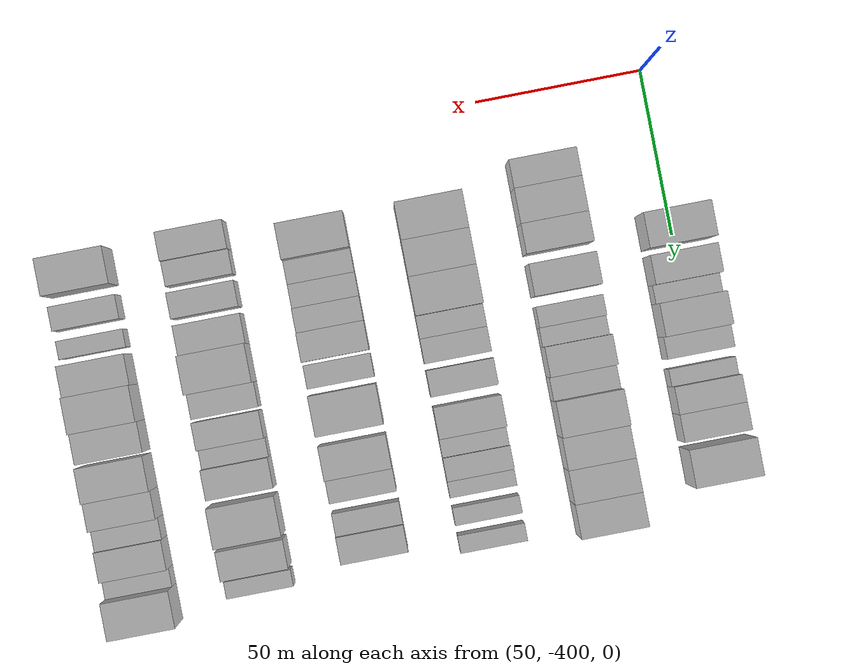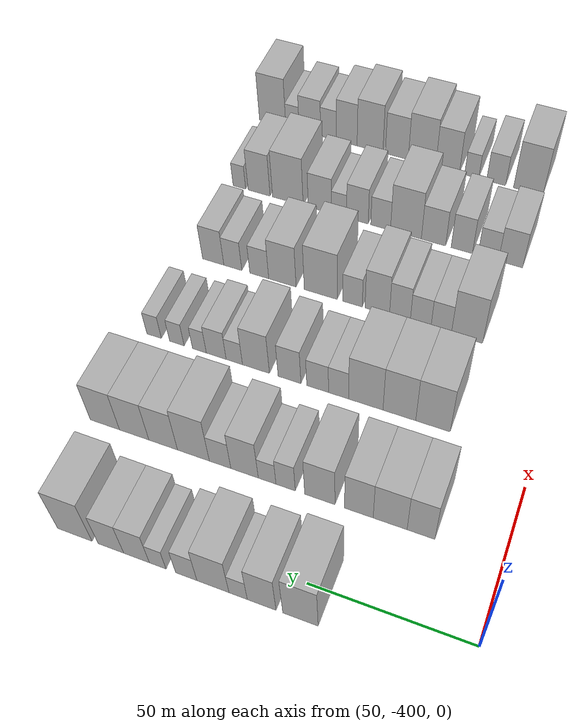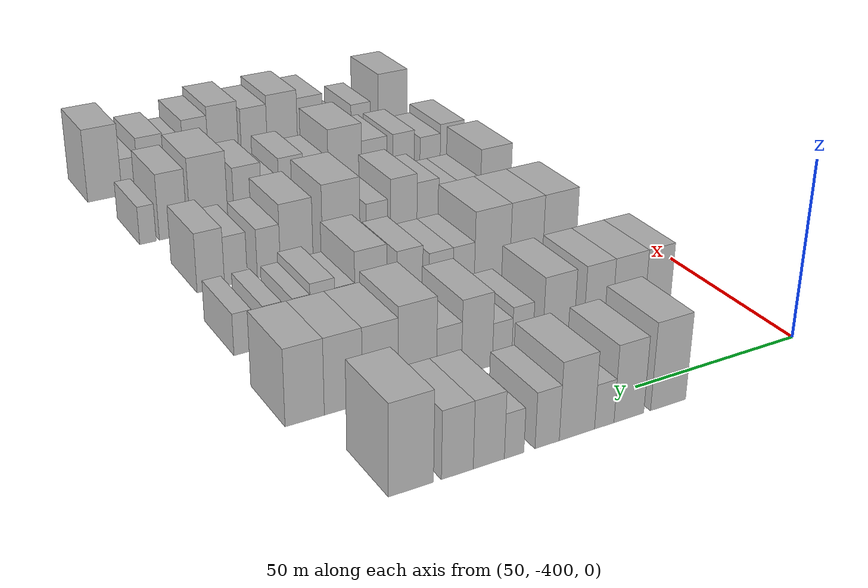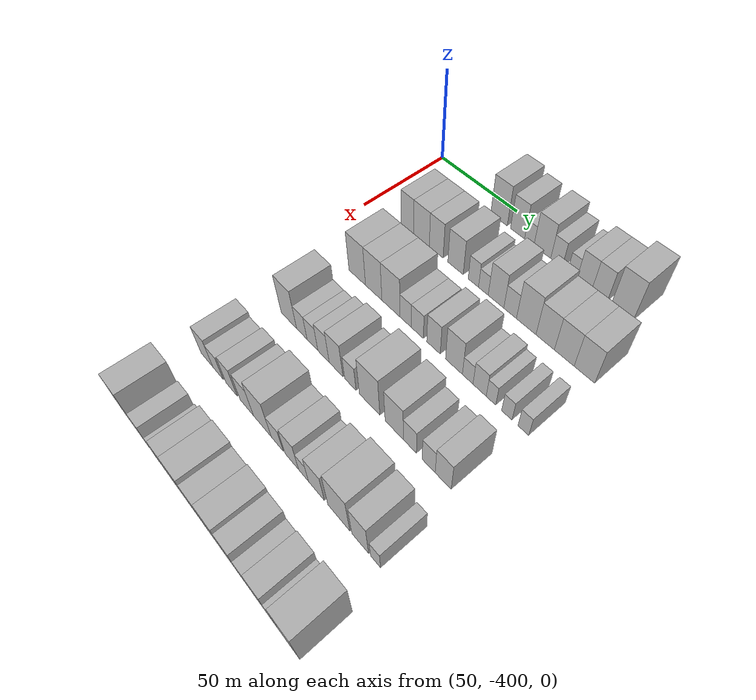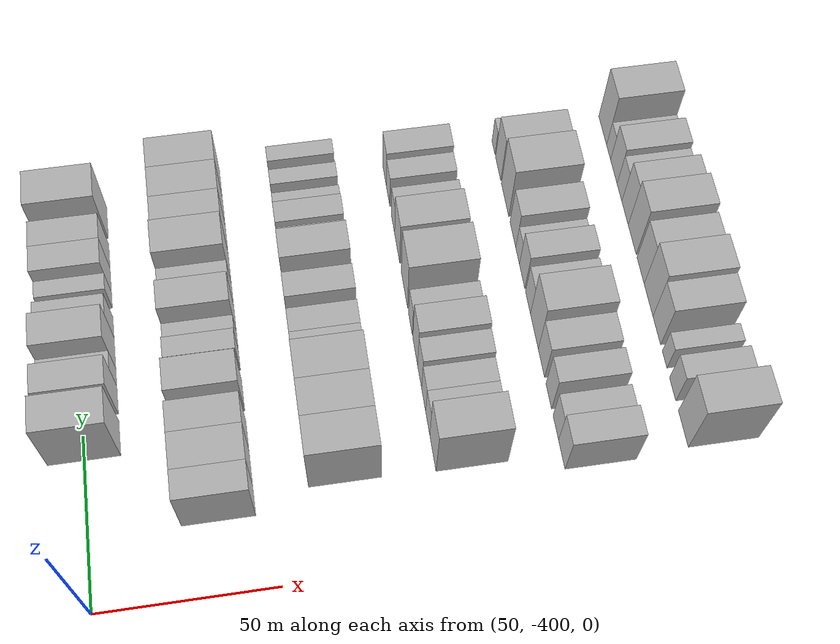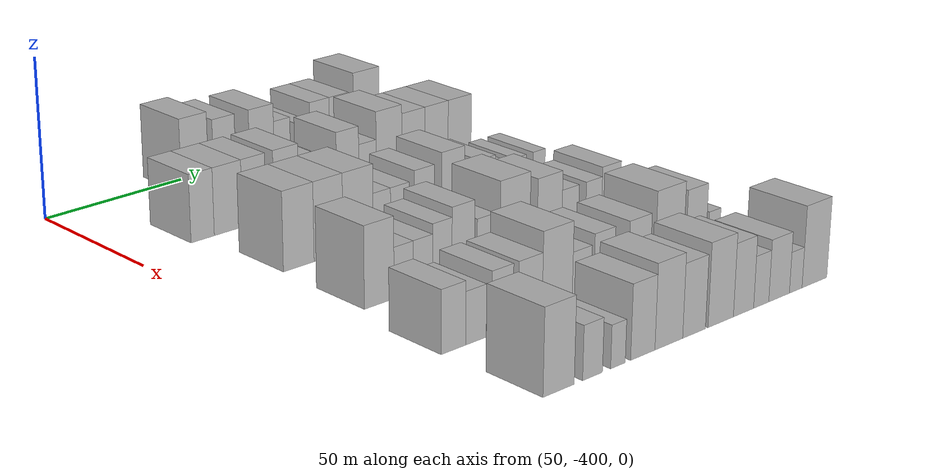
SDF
<sdf version="1.6">
 <world name="default">
  <model name="building_22">
   <static>1</static>
   <pose>50.0000 -352.0077 0 0.000000 0.000000 0.000000</pose>
   <link name="link">
    <pose>0 0 12.00 0 0 0</pose>
    <collision name="collision"><geometry><box><size>20.0000 10.4409 24.0000</size></box></geometry></collision>
    <visual name="visual">
     <cast_shadows>0</cast_shadows>
     <geometry><box><size>20.0000 10.4409 24.0000</size></box></geometry>
     <material>
      <script>
       <uri>model://HANNAS_wall/materials/scripts</uri>
       <uri>model://HANNAS_wall/materials/textures</uri>
       <name>vrc/HANNAS_wall</name>
      </script>
     </material>
    </visual>
   </link>
  </model>
  <model name="building_23">
   <static>1</static>
   <pose>50.0000 -340.4695 0 0.000000 0.000000 0.000000</pose>
   <link name="link">
    <pose>0 0 10.50 0 0 0</pose>
    <collision name="collision"><geometry><box><size>20.0000 8.6354 21.0000</size></box></geometry></collision>
    <visual name="visual">
     <cast_shadows>0</cast_shadows>
     <geometry><box><size>20.0000 8.6354 21.0000</size></box></geometry>
     <material>
      <script>
       <uri>model://HANNAS_wall/materials/scripts</uri>
       <uri>model://HANNAS_wall/materials/textures</uri>
       <name>vrc/HANNAS_wall</name>
      </script>
     </material>
    </visual>
   </link>
  </model>
  <model name="building_24">
   <static>1</static>
   <pose>50.0000 -333.3850 0 0.000000 0.000000 0.000000</pose>
   <link name="link">
    <pose>0 0 6.00 0 0 0</pose>
    <collision name="collision"><geometry><box><size>20.0000 5.5336 12.0000</size></box></geometry></collision>
    <visual name="visual">
     <cast_shadows>0</cast_shadows>
     <geometry><box><size>20.0000 5.5336 12.0000</size></box></geometry>
     <material>
      <script>
       <uri>model://HANNAS_wall/materials/scripts</uri>
       <uri>model://HANNAS_wall/materials/textures</uri>
       <name>vrc/HANNAS_wall</name>
      </script>
     </material>
    </visual>
   </link>
  </model>
  <model name="building_25">
   <static>1</static>
   <pose>50.0000 -325.6916 0 0.000000 0.000000 0.000000</pose>
   <link name="link">
    <pose>0 0 10.50 0 0 0</pose>
    <collision name="collision"><geometry><box><size>20.0000 9.8531 21.0000</size></box></geometry></collision>
    <visual name="visual">
     <cast_shadows>0</cast_shadows>
     <geometry><box><size>20.0000 9.8531 21.0000</size></box></geometry>
     <material>
      <script>
       <uri>model://HANNAS_wall/materials/scripts</uri>
       <uri>model://HANNAS_wall/materials/textures</uri>
       <name>vrc/HANNAS_wall</name>
      </script>
     </material>
    </visual>
   </link>
  </model>
  <model name="building_26">
   <static>1</static>
   <pose>50.0000 -317.4482 0 0.000000 0.000000 0.000000</pose>
   <link name="link">
    <pose>0 0 7.50 0 0 0</pose>
    <collision name="collision"><geometry><box><size>20.0000 6.6337 15.0000</size></box></geometry></collision>
    <visual name="visual">
     <cast_shadows>0</cast_shadows>
     <geometry><box><size>20.0000 6.6337 15.0000</size></box></geometry>
     <material>
      <script>
       <uri>model://HANNAS_wall/materials/scripts</uri>
       <uri>model://HANNAS_wall/materials/textures</uri>
       <name>vrc/HANNAS_wall</name>
      </script>
     </material>
    </visual>
   </link>
  </model>
  <model name="building_27">
   <static>1</static>
   <pose>50.0000 -308.5214 0 0.000000 0.000000 0.000000</pose>
   <link name="link">
    <pose>0 0 6.00 0 0 0</pose>
    <collision name="collision"><geometry><box><size>20.0000 5.2200 12.0000</size></box></geometry></collision>
    <visual name="visual">
     <cast_shadows>0</cast_shadows>
     <geometry><box><size>20.0000 5.2200 12.0000</size></box></geometry>
     <material>
      <script>
       <uri>model://HANNAS_wall/materials/scripts</uri>
       <uri>model://HANNAS_wall/materials/textures</uri>
       <name>vrc/HANNAS_wall</name>
      </script>
     </material>
    </visual>
   </link>
  </model>
  <model name="building_28">
   <static>1</static>
   <pose>50.0000 -301.8301 0 0.000000 0.000000 0.000000</pose>
   <link name="link">
    <pose>0 0 9.00 0 0 0</pose>
    <collision name="collision"><geometry><box><size>20.0000 8.1626 18.0000</size></box></geometry></collision>
    <visual name="visual">
     <cast_shadows>0</cast_shadows>
     <geometry><box><size>20.0000 8.1626 18.0000</size></box></geometry>
     <material>
      <script>
       <uri>model://HANNAS_wall/materials/scripts</uri>
       <uri>model://HANNAS_wall/materials/textures</uri>
       <name>vrc/HANNAS_wall</name>
      </script>
     </material>
    </visual>
   </link>
  </model>
  <model name="building_29">
   <static>1</static>
   <pose>50.0000 -293.6463 0 0.000000 0.000000 0.000000</pose>
   <link name="link">
    <pose>0 0 9.00 0 0 0</pose>
    <collision name="collision"><geometry><box><size>20.0000 8.2050 18.0000</size></box></geometry></collision>
    <visual name="visual">
     <cast_shadows>0</cast_shadows>
     <geometry><box><size>20.0000 8.2050 18.0000</size></box></geometry>
     <material>
      <script>
       <uri>model://HANNAS_wall/materials/scripts</uri>
       <uri>model://HANNAS_wall/materials/textures</uri>
       <name>vrc/HANNAS_wall</name>
      </script>
     </material>
    </visual>
   </link>
  </model>
  <model name="building_30">
   <static>1</static>
   <pose>50.0000 -281.9249 0 0.000000 0.000000 0.000000</pose>
   <link name="link">
    <pose>0 0 12.00 0 0 0</pose>
    <collision name="collision"><geometry><box><size>20.0000 11.2378 24.0000</size></box></geometry></collision>
    <visual name="visual">
     <cast_shadows>0</cast_shadows>
     <geometry><box><size>20.0000 11.2378 24.0000</size></box></geometry>
     <material>
      <script>
       <uri>model://HANNAS_wall/materials/scripts</uri>
       <uri>model://HANNAS_wall/materials/textures</uri>
       <name>vrc/HANNAS_wall</name>
      </script>
     </material>
    </visual>
   </link>
  </model>
  <model name="building_152">
   <static>1</static>
   <pose>85.0000 -375.4926 0 0.000000 0.000000 0.000000</pose>
   <link name="link">
    <pose>0 0 10.50 0 0 0</pose>
    <collision name="collision"><geometry><box><size>20.0000 8.4163 21.0000</size></box></geometry></collision>
    <visual name="visual">
     <cast_shadows>0</cast_shadows>
     <geometry><box><size>20.0000 8.4163 21.0000</size></box></geometry>
     <material>
      <script>
       <uri>model://HANNAS_wall/materials/scripts</uri>
       <uri>model://HANNAS_wall/materials/textures</uri>
       <name>vrc/HANNAS_wall</name>
      </script>
     </material>
    </visual>
   </link>
  </model>
  <model name="building_153">
   <static>1</static>
   <pose>85.0000 -366.0868 0 0.000000 0.000000 0.000000</pose>
   <link name="link">
    <pose>0 0 10.50 0 0 0</pose>
    <collision name="collision"><geometry><box><size>20.0000 10.3954 21.0000</size></box></geometry></collision>
    <visual name="visual">
     <cast_shadows>0</cast_shadows>
     <geometry><box><size>20.0000 10.3954 21.0000</size></box></geometry>
     <material>
      <script>
       <uri>model://HANNAS_wall/materials/scripts</uri>
       <uri>model://HANNAS_wall/materials/textures</uri>
       <name>vrc/HANNAS_wall</name>
      </script>
     </material>
    </visual>
   </link>
  </model>
  <model name="building_154">
   <static>1</static>
   <pose>85.0000 -356.4358 0 0.000000 0.000000 0.000000</pose>
   <link name="link">
    <pose>0 0 10.50 0 0 0</pose>
    <collision name="collision"><geometry><box><size>20.0000 8.9065 21.0000</size></box></geometry></collision>
    <visual name="visual">
     <cast_shadows>0</cast_shadows>
     <geometry><box><size>20.0000 8.9065 21.0000</size></box></geometry>
     <material>
      <script>
       <uri>model://HANNAS_wall/materials/scripts</uri>
       <uri>model://HANNAS_wall/materials/textures</uri>
       <name>vrc/HANNAS_wall</name>
      </script>
     </material>
    </visual>
   </link>
  </model>
  <model name="building_155">
   <static>1</static>
   <pose>85.0000 -344.2010 0 0.000000 0.000000 0.000000</pose>
   <link name="link">
    <pose>0 0 10.50 0 0 0</pose>
    <collision name="collision"><geometry><box><size>20.0000 9.5631 21.0000</size></box></geometry></collision>
    <visual name="visual">
     <cast_shadows>0</cast_shadows>
     <geometry><box><size>20.0000 9.5631 21.0000</size></box></geometry>
     <material>
      <script>
       <uri>model://HANNAS_wall/materials/scripts</uri>
       <uri>model://HANNAS_wall/materials/textures</uri>
       <name>vrc/HANNAS_wall</name>
      </script>
     </material>
    </visual>
   </link>
  </model>
  <model name="building_156">
   <static>1</static>
   <pose>85.0000 -333.3163 0 0.000000 0.000000 0.000000</pose>
   <link name="link">
    <pose>0 0 7.50 0 0 0</pose>
    <collision name="collision"><geometry><box><size>20.0000 6.2062 15.0000</size></box></geometry></collision>
    <visual name="visual">
     <cast_shadows>0</cast_shadows>
     <geometry><box><size>20.0000 6.2062 15.0000</size></box></geometry>
     <material>
      <script>
       <uri>model://HANNAS_wall/materials/scripts</uri>
       <uri>model://HANNAS_wall/materials/textures</uri>
       <name>vrc/HANNAS_wall</name>
      </script>
     </material>
    </visual>
   </link>
  </model>
  <model name="building_157">
   <static>1</static>
   <pose>85.0000 -327.3592 0 0.000000 0.000000 0.000000</pose>
   <link name="link">
    <pose>0 0 6.00 0 0 0</pose>
    <collision name="collision"><geometry><box><size>20.0000 5.7081 12.0000</size></box></geometry></collision>
    <visual name="visual">
     <cast_shadows>0</cast_shadows>
     <geometry><box><size>20.0000 5.7081 12.0000</size></box></geometry>
     <material>
      <script>
       <uri>model://HANNAS_wall/materials/scripts</uri>
       <uri>model://HANNAS_wall/materials/textures</uri>
       <name>vrc/HANNAS_wall</name>
      </script>
     </material>
    </visual>
   </link>
  </model>
  <model name="building_158">
   <static>1</static>
   <pose>85.0000 -320.0160 0 0.000000 0.000000 0.000000</pose>
   <link name="link">
    <pose>0 0 10.50 0 0 0</pose>
    <collision name="collision"><geometry><box><size>20.0000 8.9783 21.0000</size></box></geometry></collision>
    <visual name="visual">
     <cast_shadows>0</cast_shadows>
     <geometry><box><size>20.0000 8.9783 21.0000</size></box></geometry>
     <material>
      <script>
       <uri>model://HANNAS_wall/materials/scripts</uri>
       <uri>model://HANNAS_wall/materials/textures</uri>
       <name>vrc/HANNAS_wall</name>
      </script>
     </material>
    </visual>
   </link>
  </model>
  <model name="building_159">
   <static>1</static>
   <pose>85.0000 -311.9752 0 0.000000 0.000000 0.000000</pose>
   <link name="link">
    <pose>0 0 7.50 0 0 0</pose>
    <collision name="collision"><geometry><box><size>20.0000 7.1032 15.0000</size></box></geometry></collision>
    <visual name="visual">
     <cast_shadows>0</cast_shadows>
     <geometry><box><size>20.0000 7.1032 15.0000</size></box></geometry>
     <material>
      <script>
       <uri>model://HANNAS_wall/materials/scripts</uri>
       <uri>model://HANNAS_wall/materials/textures</uri>
       <name>vrc/HANNAS_wall</name>
      </script>
     </material>
    </visual>
   </link>
  </model>
  <model name="building_160">
   <static>1</static>
   <pose>85.0000 -303.0993 0 0.000000 0.000000 0.000000</pose>
   <link name="link">
    <pose>0 0 12.00 0 0 0</pose>
    <collision name="collision"><geometry><box><size>20.0000 10.6486 24.0000</size></box></geometry></collision>
    <visual name="visual">
     <cast_shadows>0</cast_shadows>
     <geometry><box><size>20.0000 10.6486 24.0000</size></box></geometry>
     <material>
      <script>
       <uri>model://HANNAS_wall/materials/scripts</uri>
       <uri>model://HANNAS_wall/materials/textures</uri>
       <name>vrc/HANNAS_wall</name>
      </script>
     </material>
    </visual>
   </link>
  </model>
  <model name="building_161">
   <static>1</static>
   <pose>85.0000 -292.9162 0 0.000000 0.000000 0.000000</pose>
   <link name="link">
    <pose>0 0 10.50 0 0 0</pose>
    <collision name="collision"><geometry><box><size>20.0000 9.7176 21.0000</size></box></geometry></collision>
    <visual name="visual">
     <cast_shadows>0</cast_shadows>
     <geometry><box><size>20.0000 9.7176 21.0000</size></box></geometry>
     <material>
      <script>
       <uri>model://HANNAS_wall/materials/scripts</uri>
       <uri>model://HANNAS_wall/materials/textures</uri>
       <name>vrc/HANNAS_wall</name>
      </script>
     </material>
    </visual>
   </link>
  </model>
  <model name="building_162">
   <static>1</static>
   <pose>85.0000 -283.0141 0 0.000000 0.000000 0.000000</pose>
   <link name="link">
    <pose>0 0 10.50 0 0 0</pose>
    <collision name="collision"><geometry><box><size>20.0000 10.0865 21.0000</size></box></geometry></collision>
    <visual name="visual">
     <cast_shadows>0</cast_shadows>
     <geometry><box><size>20.0000 10.0865 21.0000</size></box></geometry>
     <material>
      <script>
       <uri>model://HANNAS_wall/materials/scripts</uri>
       <uri>model://HANNAS_wall/materials/textures</uri>
       <name>vrc/HANNAS_wall</name>
      </script>
     </material>
    </visual>
   </link>
  </model>
  <model name="building_163">
   <static>1</static>
   <pose>85.0000 -272.8892 0 0.000000 0.000000 0.000000</pose>
   <link name="link">
    <pose>0 0 10.50 0 0 0</pose>
    <collision name="collision"><geometry><box><size>20.0000 10.1632 21.0000</size></box></geometry></collision>
    <visual name="visual">
     <cast_shadows>0</cast_shadows>
     <geometry><box><size>20.0000 10.1632 21.0000</size></box></geometry>
     <material>
      <script>
       <uri>model://HANNAS_wall/materials/scripts</uri>
       <uri>model://HANNAS_wall/materials/textures</uri>
       <name>vrc/HANNAS_wall</name>
      </script>
     </material>
    </visual>
   </link>
  </model>
  <model name="building_276">
   <static>1</static>
   <pose>120.0000 -368.1875 0 0.000000 0.000000 0.000000</pose>
   <link name="link">
    <pose>0 0 12.00 0 0 0</pose>
    <collision name="collision"><geometry><box><size>20.0000 11.1680 24.0000</size></box></geometry></collision>
    <visual name="visual">
     <cast_shadows>0</cast_shadows>
     <geometry><box><size>20.0000 11.1680 24.0000</size></box></geometry>
     <material>
      <script>
       <uri>model://HANNAS_wall/materials/scripts</uri>
       <uri>model://HANNAS_wall/materials/textures</uri>
       <name>vrc/HANNAS_wall</name>
      </script>
     </material>
    </visual>
   </link>
  </model>
  <model name="building_277">
   <static>1</static>
   <pose>120.0000 -357.2336 0 0.000000 0.000000 0.000000</pose>
   <link name="link">
    <pose>0 0 12.00 0 0 0</pose>
    <collision name="collision"><geometry><box><size>20.0000 10.7397 24.0000</size></box></geometry></collision>
    <visual name="visual">
     <cast_shadows>0</cast_shadows>
     <geometry><box><size>20.0000 10.7397 24.0000</size></box></geometry>
     <material>
      <script>
       <uri>model://HANNAS_wall/materials/scripts</uri>
       <uri>model://HANNAS_wall/materials/textures</uri>
       <name>vrc/HANNAS_wall</name>
      </script>
     </material>
    </visual>
   </link>
  </model>
  <model name="building_278">
   <static>1</static>
   <pose>120.0000 -346.1389 0 0.000000 0.000000 0.000000</pose>
   <link name="link">
    <pose>0 0 12.00 0 0 0</pose>
    <collision name="collision"><geometry><box><size>20.0000 11.4497 24.0000</size></box></geometry></collision>
    <visual name="visual">
     <cast_shadows>0</cast_shadows>
     <geometry><box><size>20.0000 11.4497 24.0000</size></box></geometry>
     <material>
      <script>
       <uri>model://HANNAS_wall/materials/scripts</uri>
       <uri>model://HANNAS_wall/materials/textures</uri>
       <name>vrc/HANNAS_wall</name>
      </script>
     </material>
    </visual>
   </link>
  </model>
  <model name="building_279">
   <static>1</static>
   <pose>120.0000 -337.0385 0 0.000000 0.000000 0.000000</pose>
   <link name="link">
    <pose>0 0 7.50 0 0 0</pose>
    <collision name="collision"><geometry><box><size>20.0000 6.7510 15.0000</size></box></geometry></collision>
    <visual name="visual">
     <cast_shadows>0</cast_shadows>
     <geometry><box><size>20.0000 6.7510 15.0000</size></box></geometry>
     <material>
      <script>
       <uri>model://HANNAS_wall/materials/scripts</uri>
       <uri>model://HANNAS_wall/materials/textures</uri>
       <name>vrc/HANNAS_wall</name>
      </script>
     </material>
    </visual>
   </link>
  </model>
  <model name="building_280">
   <static>1</static>
   <pose>120.0000 -329.9640 0 0.000000 0.000000 0.000000</pose>
   <link name="link">
    <pose>0 0 7.50 0 0 0</pose>
    <collision name="collision"><geometry><box><size>20.0000 7.3981 15.0000</size></box></geometry></collision>
    <visual name="visual">
     <cast_shadows>0</cast_shadows>
     <geometry><box><size>20.0000 7.3981 15.0000</size></box></geometry>
     <material>
      <script>
       <uri>model://HANNAS_wall/materials/scripts</uri>
       <uri>model://HANNAS_wall/materials/textures</uri>
       <name>vrc/HANNAS_wall</name>
      </script>
     </material>
    </visual>
   </link>
  </model>
  <model name="building_281">
   <static>1</static>
   <pose>120.0000 -320.3409 0 0.000000 0.000000 0.000000</pose>
   <link name="link">
    <pose>0 0 9.00 0 0 0</pose>
    <collision name="collision"><geometry><box><size>20.0000 7.8481 18.0000</size></box></geometry></collision>
    <visual name="visual">
     <cast_shadows>0</cast_shadows>
     <geometry><box><size>20.0000 7.8481 18.0000</size></box></geometry>
     <material>
      <script>
       <uri>model://HANNAS_wall/materials/scripts</uri>
       <uri>model://HANNAS_wall/materials/textures</uri>
       <name>vrc/HANNAS_wall</name>
      </script>
     </material>
    </visual>
   </link>
  </model>
  <model name="building_282">
   <static>1</static>
   <pose>120.0000 -308.7063 0 0.000000 0.000000 0.000000</pose>
   <link name="link">
    <pose>0 0 10.50 0 0 0</pose>
    <collision name="collision"><geometry><box><size>20.0000 9.4210 21.0000</size></box></geometry></collision>
    <visual name="visual">
     <cast_shadows>0</cast_shadows>
     <geometry><box><size>20.0000 9.4210 21.0000</size></box></geometry>
     <material>
      <script>
       <uri>model://HANNAS_wall/materials/scripts</uri>
       <uri>model://HANNAS_wall/materials/textures</uri>
       <name>vrc/HANNAS_wall</name>
      </script>
     </material>
    </visual>
   </link>
  </model>
  <model name="building_283">
   <static>1</static>
   <pose>120.0000 -301.1036 0 0.000000 0.000000 0.000000</pose>
   <link name="link">
    <pose>0 0 6.00 0 0 0</pose>
    <collision name="collision"><geometry><box><size>20.0000 5.7844 12.0000</size></box></geometry></collision>
    <visual name="visual">
     <cast_shadows>0</cast_shadows>
     <geometry><box><size>20.0000 5.7844 12.0000</size></box></geometry>
     <material>
      <script>
       <uri>model://HANNAS_wall/materials/scripts</uri>
       <uri>model://HANNAS_wall/materials/textures</uri>
       <name>vrc/HANNAS_wall</name>
      </script>
     </material>
    </visual>
   </link>
  </model>
  <model name="building_284">
   <static>1</static>
   <pose>120.0000 -294.6930 0 0.000000 0.000000 0.000000</pose>
   <link name="link">
    <pose>0 0 7.50 0 0 0</pose>
    <collision name="collision"><geometry><box><size>20.0000 7.0369 15.0000</size></box></geometry></collision>
    <visual name="visual">
     <cast_shadows>0</cast_shadows>
     <geometry><box><size>20.0000 7.0369 15.0000</size></box></geometry>
     <material>
      <script>
       <uri>model://HANNAS_wall/materials/scripts</uri>
       <uri>model://HANNAS_wall/materials/textures</uri>
       <name>vrc/HANNAS_wall</name>
      </script>
     </material>
    </visual>
   </link>
  </model>
  <model name="building_285">
   <static>1</static>
   <pose>120.0000 -288.6982 0 0.000000 0.000000 0.000000</pose>
   <link name="link">
    <pose>0 0 6.00 0 0 0</pose>
    <collision name="collision"><geometry><box><size>20.0000 4.9527 12.0000</size></box></geometry></collision>
    <visual name="visual">
     <cast_shadows>0</cast_shadows>
     <geometry><box><size>20.0000 4.9527 12.0000</size></box></geometry>
     <material>
      <script>
       <uri>model://HANNAS_wall/materials/scripts</uri>
       <uri>model://HANNAS_wall/materials/textures</uri>
       <name>vrc/HANNAS_wall</name>
      </script>
     </material>
    </visual>
   </link>
  </model>
  <model name="building_286">
   <static>1</static>
   <pose>120.0000 -280.5919 0 0.000000 0.000000 0.000000</pose>
   <link name="link">
    <pose>0 0 6.00 0 0 0</pose>
    <collision name="collision"><geometry><box><size>20.0000 5.2598 12.0000</size></box></geometry></collision>
    <visual name="visual">
     <cast_shadows>0</cast_shadows>
     <geometry><box><size>20.0000 5.2598 12.0000</size></box></geometry>
     <material>
      <script>
       <uri>model://HANNAS_wall/materials/scripts</uri>
       <uri>model://HANNAS_wall/materials/textures</uri>
       <name>vrc/HANNAS_wall</name>
      </script>
     </material>
    </visual>
   </link>
  </model>
  <model name="building_287">
   <static>1</static>
   <pose>120.0000 -272.3166 0 0.000000 0.000000 0.000000</pose>
   <link name="link">
    <pose>0 0 6.00 0 0 0</pose>
    <collision name="collision"><geometry><box><size>20.0000 5.2909 12.0000</size></box></geometry></collision>
    <visual name="visual">
     <cast_shadows>0</cast_shadows>
     <geometry><box><size>20.0000 5.2909 12.0000</size></box></geometry>
     <material>
      <script>
       <uri>model://HANNAS_wall/materials/scripts</uri>
       <uri>model://HANNAS_wall/materials/textures</uri>
       <name>vrc/HANNAS_wall</name>
      </script>
     </material>
    </visual>
   </link>
  </model>
  <model name="building_403">
   <static>1</static>
   <pose>155.0000 -368.9503 0 0.000000 0.000000 0.000000</pose>
   <link name="link">
    <pose>0 0 12.00 0 0 0</pose>
    <collision name="collision"><geometry><box><size>20.0000 10.6527 24.0000</size></box></geometry></collision>
    <visual name="visual">
     <cast_shadows>0</cast_shadows>
     <geometry><box><size>20.0000 10.6527 24.0000</size></box></geometry>
     <material>
      <script>
       <uri>model://HANNAS_wall/materials/scripts</uri>
       <uri>model://HANNAS_wall/materials/textures</uri>
       <name>vrc/HANNAS_wall</name>
      </script>
     </material>
    </visual>
   </link>
  </model>
  <model name="building_404">
   <static>1</static>
   <pose>155.0000 -360.1043 0 0.000000 0.000000 0.000000</pose>
   <link name="link">
    <pose>0 0 7.50 0 0 0</pose>
    <collision name="collision"><geometry><box><size>20.0000 7.0394 15.0000</size></box></geometry></collision>
    <visual name="visual">
     <cast_shadows>0</cast_shadows>
     <geometry><box><size>20.0000 7.0394 15.0000</size></box></geometry>
     <material>
      <script>
       <uri>model://HANNAS_wall/materials/scripts</uri>
       <uri>model://HANNAS_wall/materials/textures</uri>
       <name>vrc/HANNAS_wall</name>
      </script>
     </material>
    </visual>
   </link>
  </model>
  <model name="building_405">
   <static>1</static>
   <pose>155.0000 -352.9973 0 0.000000 0.000000 0.000000</pose>
   <link name="link">
    <pose>0 0 7.50 0 0 0</pose>
    <collision name="collision"><geometry><box><size>20.0000 7.1747 15.0000</size></box></geometry></collision>
    <visual name="visual">
     <cast_shadows>0</cast_shadows>
     <geometry><box><size>20.0000 7.1747 15.0000</size></box></geometry>
     <material>
      <script>
       <uri>model://HANNAS_wall/materials/scripts</uri>
       <uri>model://HANNAS_wall/materials/textures</uri>
       <name>vrc/HANNAS_wall</name>
      </script>
     </material>
    </visual>
   </link>
  </model>
  <model name="building_406">
   <static>1</static>
   <pose>155.0000 -345.7647 0 0.000000 0.000000 0.000000</pose>
   <link name="link">
    <pose>0 0 9.00 0 0 0</pose>
    <collision name="collision"><geometry><box><size>20.0000 7.2905 18.0000</size></box></geometry></collision>
    <visual name="visual">
     <cast_shadows>0</cast_shadows>
     <geometry><box><size>20.0000 7.2905 18.0000</size></box></geometry>
     <material>
      <script>
       <uri>model://HANNAS_wall/materials/scripts</uri>
       <uri>model://HANNAS_wall/materials/textures</uri>
       <name>vrc/HANNAS_wall</name>
      </script>
     </material>
    </visual>
   </link>
  </model>
  <model name="building_407">
   <static>1</static>
   <pose>155.0000 -337.7962 0 0.000000 0.000000 0.000000</pose>
   <link name="link">
    <pose>0 0 10.50 0 0 0</pose>
    <collision name="collision"><geometry><box><size>20.0000 8.6464 21.0000</size></box></geometry></collision>
    <visual name="visual">
     <cast_shadows>0</cast_shadows>
     <geometry><box><size>20.0000 8.6464 21.0000</size></box></geometry>
     <material>
      <script>
       <uri>model://HANNAS_wall/materials/scripts</uri>
       <uri>model://HANNAS_wall/materials/textures</uri>
       <name>vrc/HANNAS_wall</name>
      </script>
     </material>
    </visual>
   </link>
  </model>
  <model name="building_408">
   <static>1</static>
   <pose>155.0000 -328.9849 0 0.000000 0.000000 0.000000</pose>
   <link name="link">
    <pose>0 0 7.50 0 0 0</pose>
    <collision name="collision"><geometry><box><size>20.0000 6.9763 15.0000</size></box></geometry></collision>
    <visual name="visual">
     <cast_shadows>0</cast_shadows>
     <geometry><box><size>20.0000 6.9763 15.0000</size></box></geometry>
     <material>
      <script>
       <uri>model://HANNAS_wall/materials/scripts</uri>
       <uri>model://HANNAS_wall/materials/textures</uri>
       <name>vrc/HANNAS_wall</name>
      </script>
     </material>
    </visual>
   </link>
  </model>
  <model name="building_409">
   <static>1</static>
   <pose>155.0000 -317.5278 0 0.000000 0.000000 0.000000</pose>
   <link name="link">
    <pose>0 0 12.00 0 0 0</pose>
    <collision name="collision"><geometry><box><size>20.0000 11.9379 24.0000</size></box></geometry></collision>
    <visual name="visual">
     <cast_shadows>0</cast_shadows>
     <geometry><box><size>20.0000 11.9379 24.0000</size></box></geometry>
     <material>
      <script>
       <uri>model://HANNAS_wall/materials/scripts</uri>
       <uri>model://HANNAS_wall/materials/textures</uri>
       <name>vrc/HANNAS_wall</name>
      </script>
     </material>
    </visual>
   </link>
  </model>
  <model name="building_410">
   <static>1</static>
   <pose>155.0000 -303.4984 0 0.000000 0.000000 0.000000</pose>
   <link name="link">
    <pose>0 0 10.50 0 0 0</pose>
    <collision name="collision"><geometry><box><size>20.0000 10.1208 21.0000</size></box></geometry></collision>
    <visual name="visual">
     <cast_shadows>0</cast_shadows>
     <geometry><box><size>20.0000 10.1208 21.0000</size></box></geometry>
     <material>
      <script>
       <uri>model://HANNAS_wall/materials/scripts</uri>
       <uri>model://HANNAS_wall/materials/textures</uri>
       <name>vrc/HANNAS_wall</name>
      </script>
     </material>
    </visual>
   </link>
  </model>
  <model name="building_411">
   <static>1</static>
   <pose>155.0000 -294.9211 0 0.000000 0.000000 0.000000</pose>
   <link name="link">
    <pose>0 0 7.50 0 0 0</pose>
    <collision name="collision"><geometry><box><size>20.0000 7.0338 15.0000</size></box></geometry></collision>
    <visual name="visual">
     <cast_shadows>0</cast_shadows>
     <geometry><box><size>20.0000 7.0338 15.0000</size></box></geometry>
     <material>
      <script>
       <uri>model://HANNAS_wall/materials/scripts</uri>
       <uri>model://HANNAS_wall/materials/textures</uri>
       <name>vrc/HANNAS_wall</name>
      </script>
     </material>
    </visual>
   </link>
  </model>
  <model name="building_412">
   <static>1</static>
   <pose>155.0000 -285.0099 0 0.000000 0.000000 0.000000</pose>
   <link name="link">
    <pose>0 0 7.50 0 0 0</pose>
    <collision name="collision"><geometry><box><size>20.0000 6.7885 15.0000</size></box></geometry></collision>
    <visual name="visual">
     <cast_shadows>0</cast_shadows>
     <geometry><box><size>20.0000 6.7885 15.0000</size></box></geometry>
     <material>
      <script>
       <uri>model://HANNAS_wall/materials/scripts</uri>
       <uri>model://HANNAS_wall/materials/textures</uri>
       <name>vrc/HANNAS_wall</name>
      </script>
     </material>
    </visual>
   </link>
  </model>
  <model name="building_413">
   <static>1</static>
   <pose>155.0000 -277.5791 0 0.000000 0.000000 0.000000</pose>
   <link name="link">
    <pose>0 0 9.00 0 0 0</pose>
    <collision name="collision"><geometry><box><size>20.0000 8.0732 18.0000</size></box></geometry></collision>
    <visual name="visual">
     <cast_shadows>0</cast_shadows>
     <geometry><box><size>20.0000 8.0732 18.0000</size></box></geometry>
     <material>
      <script>
       <uri>model://HANNAS_wall/materials/scripts</uri>
       <uri>model://HANNAS_wall/materials/textures</uri>
       <name>vrc/HANNAS_wall</name>
      </script>
     </material>
    </visual>
   </link>
  </model>
  <model name="building_528">
   <static>1</static>
   <pose>190.0000 -374.4769 0 0.000000 0.000000 0.000000</pose>
   <link name="link">
    <pose>0 0 9.00 0 0 0</pose>
    <collision name="collision"><geometry><box><size>20.0000 8.6157 18.0000</size></box></geometry></collision>
    <visual name="visual">
     <cast_shadows>0</cast_shadows>
     <geometry><box><size>20.0000 8.6157 18.0000</size></box></geometry>
     <material>
      <script>
       <uri>model://HANNAS_wall/materials/scripts</uri>
       <uri>model://HANNAS_wall/materials/textures</uri>
       <name>vrc/HANNAS_wall</name>
      </script>
     </material>
    </visual>
   </link>
  </model>
  <model name="building_529">
   <static>1</static>
   <pose>190.0000 -366.4782 0 0.000000 0.000000 0.000000</pose>
   <link name="link">
    <pose>0 0 7.50 0 0 0</pose>
    <collision name="collision"><geometry><box><size>20.0000 7.3817 15.0000</size></box></geometry></collision>
    <visual name="visual">
     <cast_shadows>0</cast_shadows>
     <geometry><box><size>20.0000 7.3817 15.0000</size></box></geometry>
     <material>
      <script>
       <uri>model://HANNAS_wall/materials/scripts</uri>
       <uri>model://HANNAS_wall/materials/textures</uri>
       <name>vrc/HANNAS_wall</name>
      </script>
     </material>
    </visual>
   </link>
  </model>
  <model name="building_530">
   <static>1</static>
   <pose>190.0000 -356.9107 0 0.000000 0.000000 0.000000</pose>
   <link name="link">
    <pose>0 0 9.00 0 0 0</pose>
    <collision name="collision"><geometry><box><size>20.0000 7.7533 18.0000</size></box></geometry></collision>
    <visual name="visual">
     <cast_shadows>0</cast_shadows>
     <geometry><box><size>20.0000 7.7533 18.0000</size></box></geometry>
     <material>
      <script>
       <uri>model://HANNAS_wall/materials/scripts</uri>
       <uri>model://HANNAS_wall/materials/textures</uri>
       <name>vrc/HANNAS_wall</name>
      </script>
     </material>
    </visual>
   </link>
  </model>
  <model name="building_531">
   <static>1</static>
   <pose>190.0000 -346.5683 0 0.000000 0.000000 0.000000</pose>
   <link name="link">
    <pose>0 0 9.00 0 0 0</pose>
    <collision name="collision"><geometry><box><size>20.0000 8.9315 18.0000</size></box></geometry></collision>
    <visual name="visual">
     <cast_shadows>0</cast_shadows>
     <geometry><box><size>20.0000 8.9315 18.0000</size></box></geometry>
     <material>
      <script>
       <uri>model://HANNAS_wall/materials/scripts</uri>
       <uri>model://HANNAS_wall/materials/textures</uri>
       <name>vrc/HANNAS_wall</name>
      </script>
     </material>
    </visual>
   </link>
  </model>
  <model name="building_532">
   <static>1</static>
   <pose>190.0000 -336.3557 0 0.000000 0.000000 0.000000</pose>
   <link name="link">
    <pose>0 0 12.00 0 0 0</pose>
    <collision name="collision"><geometry><box><size>20.0000 11.4938 24.0000</size></box></geometry></collision>
    <visual name="visual">
     <cast_shadows>0</cast_shadows>
     <geometry><box><size>20.0000 11.4938 24.0000</size></box></geometry>
     <material>
      <script>
       <uri>model://HANNAS_wall/materials/scripts</uri>
       <uri>model://HANNAS_wall/materials/textures</uri>
       <name>vrc/HANNAS_wall</name>
      </script>
     </material>
    </visual>
   </link>
  </model>
  <model name="building_533">
   <static>1</static>
   <pose>190.0000 -326.9071 0 0.000000 0.000000 0.000000</pose>
   <link name="link">
    <pose>0 0 7.50 0 0 0</pose>
    <collision name="collision"><geometry><box><size>20.0000 7.4033 15.0000</size></box></geometry></collision>
    <visual name="visual">
     <cast_shadows>0</cast_shadows>
     <geometry><box><size>20.0000 7.4033 15.0000</size></box></geometry>
     <material>
      <script>
       <uri>model://HANNAS_wall/materials/scripts</uri>
       <uri>model://HANNAS_wall/materials/textures</uri>
       <name>vrc/HANNAS_wall</name>
      </script>
     </material>
    </visual>
   </link>
  </model>
  <model name="building_534">
   <static>1</static>
   <pose>190.0000 -318.1076 0 0.000000 0.000000 0.000000</pose>
   <link name="link">
    <pose>0 0 9.00 0 0 0</pose>
    <collision name="collision"><geometry><box><size>20.0000 8.1957 18.0000</size></box></geometry></collision>
    <visual name="visual">
     <cast_shadows>0</cast_shadows>
     <geometry><box><size>20.0000 8.1957 18.0000</size></box></geometry>
     <material>
      <script>
       <uri>model://HANNAS_wall/materials/scripts</uri>
       <uri>model://HANNAS_wall/materials/textures</uri>
       <name>vrc/HANNAS_wall</name>
      </script>
     </material>
    </visual>
   </link>
  </model>
  <model name="building_535">
   <static>1</static>
   <pose>190.0000 -311.1186 0 0.000000 0.000000 0.000000</pose>
   <link name="link">
    <pose>0 0 6.00 0 0 0</pose>
    <collision name="collision"><geometry><box><size>20.0000 5.7823 12.0000</size></box></geometry></collision>
    <visual name="visual">
     <cast_shadows>0</cast_shadows>
     <geometry><box><size>20.0000 5.7823 12.0000</size></box></geometry>
     <material>
      <script>
       <uri>model://HANNAS_wall/materials/scripts</uri>
       <uri>model://HANNAS_wall/materials/textures</uri>
       <name>vrc/HANNAS_wall</name>
      </script>
     </material>
    </visual>
   </link>
  </model>
  <model name="building_536">
   <static>1</static>
   <pose>190.0000 -303.7284 0 0.000000 0.000000 0.000000</pose>
   <link name="link">
    <pose>0 0 9.00 0 0 0</pose>
    <collision name="collision"><geometry><box><size>20.0000 8.9981 18.0000</size></box></geometry></collision>
    <visual name="visual">
     <cast_shadows>0</cast_shadows>
     <geometry><box><size>20.0000 8.9981 18.0000</size></box></geometry>
     <material>
      <script>
       <uri>model://HANNAS_wall/materials/scripts</uri>
       <uri>model://HANNAS_wall/materials/textures</uri>
       <name>vrc/HANNAS_wall</name>
      </script>
     </material>
    </visual>
   </link>
  </model>
  <model name="building_537">
   <static>1</static>
   <pose>190.0000 -291.2511 0 0.000000 0.000000 0.000000</pose>
   <link name="link">
    <pose>0 0 12.00 0 0 0</pose>
    <collision name="collision"><geometry><box><size>20.0000 11.9565 24.0000</size></box></geometry></collision>
    <visual name="visual">
     <cast_shadows>0</cast_shadows>
     <geometry><box><size>20.0000 11.9565 24.0000</size></box></geometry>
     <material>
      <script>
       <uri>model://HANNAS_wall/materials/scripts</uri>
       <uri>model://HANNAS_wall/materials/textures</uri>
       <name>vrc/HANNAS_wall</name>
      </script>
     </material>
    </visual>
   </link>
  </model>
  <model name="building_538">
   <static>1</static>
   <pose>190.0000 -279.9241 0 0.000000 0.000000 0.000000</pose>
   <link name="link">
    <pose>0 0 10.50 0 0 0</pose>
    <collision name="collision"><geometry><box><size>20.0000 8.6975 21.0000</size></box></geometry></collision>
    <visual name="visual">
     <cast_shadows>0</cast_shadows>
     <geometry><box><size>20.0000 8.6975 21.0000</size></box></geometry>
     <material>
      <script>
       <uri>model://HANNAS_wall/materials/scripts</uri>
       <uri>model://HANNAS_wall/materials/textures</uri>
       <name>vrc/HANNAS_wall</name>
      </script>
     </material>
    </visual>
   </link>
  </model>
  <model name="building_539">
   <static>1</static>
   <pose>190.0000 -272.0637 0 0.000000 0.000000 0.000000</pose>
   <link name="link">
    <pose>0 0 6.00 0 0 0</pose>
    <collision name="collision"><geometry><box><size>20.0000 5.0232 12.0000</size></box></geometry></collision>
    <visual name="visual">
     <cast_shadows>0</cast_shadows>
     <geometry><box><size>20.0000 5.0232 12.0000</size></box></geometry>
     <material>
      <script>
       <uri>model://HANNAS_wall/materials/scripts</uri>
       <uri>model://HANNAS_wall/materials/textures</uri>
       <name>vrc/HANNAS_wall</name>
      </script>
     </material>
    </visual>
   </link>
  </model>
  <model name="building_653">
   <static>1</static>
   <pose>225.0000 -371.9204 0 0.000000 0.000000 0.000000</pose>
   <link name="link">
    <pose>0 0 12.00 0 0 0</pose>
    <collision name="collision"><geometry><box><size>20.0000 11.0343 24.0000</size></box></geometry></collision>
    <visual name="visual">
     <cast_shadows>0</cast_shadows>
     <geometry><box><size>20.0000 11.0343 24.0000</size></box></geometry>
     <material>
      <script>
       <uri>model://HANNAS_wall/materials/scripts</uri>
       <uri>model://HANNAS_wall/materials/textures</uri>
       <name>vrc/HANNAS_wall</name>
      </script>
     </material>
    </visual>
   </link>
  </model>
  <model name="building_654">
   <static>1</static>
   <pose>225.0000 -359.7981 0 0.000000 0.000000 0.000000</pose>
   <link name="link">
    <pose>0 0 7.50 0 0 0</pose>
    <collision name="collision"><geometry><box><size>20.0000 7.2102 15.0000</size></box></geometry></collision>
    <visual name="visual">
     <cast_shadows>0</cast_shadows>
     <geometry><box><size>20.0000 7.2102 15.0000</size></box></geometry>
     <material>
      <script>
       <uri>model://HANNAS_wall/materials/scripts</uri>
       <uri>model://HANNAS_wall/materials/textures</uri>
       <name>vrc/HANNAS_wall</name>
      </script>
     </material>
    </visual>
   </link>
  </model>
  <model name="building_655">
   <static>1</static>
   <pose>225.0000 -350.4791 0 0.000000 0.000000 0.000000</pose>
   <link name="link">
    <pose>0 0 6.00 0 0 0</pose>
    <collision name="collision"><geometry><box><size>20.0000 5.4279 12.0000</size></box></geometry></collision>
    <visual name="visual">
     <cast_shadows>0</cast_shadows>
     <geometry><box><size>20.0000 5.4279 12.0000</size></box></geometry>
     <material>
      <script>
       <uri>model://HANNAS_wall/materials/scripts</uri>
       <uri>model://HANNAS_wall/materials/textures</uri>
       <name>vrc/HANNAS_wall</name>
      </script>
     </material>
    </visual>
   </link>
  </model>
  <model name="building_656">
   <static>1</static>
   <pose>225.0000 -341.1493 0 0.000000 0.000000 0.000000</pose>
   <link name="link">
    <pose>0 0 10.50 0 0 0</pose>
    <collision name="collision"><geometry><box><size>20.0000 9.2316 21.0000</size></box></geometry></collision>
    <visual name="visual">
     <cast_shadows>0</cast_shadows>
     <geometry><box><size>20.0000 9.2316 21.0000</size></box></geometry>
     <material>
      <script>
       <uri>model://HANNAS_wall/materials/scripts</uri>
       <uri>model://HANNAS_wall/materials/textures</uri>
       <name>vrc/HANNAS_wall</name>
      </script>
     </material>
    </visual>
   </link>
  </model>
  <model name="building_657">
   <static>1</static>
   <pose>225.0000 -331.1467 0 0.000000 0.000000 0.000000</pose>
   <link name="link">
    <pose>0 0 12.00 0 0 0</pose>
    <collision name="collision"><geometry><box><size>20.0000 10.7738 24.0000</size></box></geometry></collision>
    <visual name="visual">
     <cast_shadows>0</cast_shadows>
     <geometry><box><size>20.0000 10.7738 24.0000</size></box></geometry>
     <material>
      <script>
       <uri>model://HANNAS_wall/materials/scripts</uri>
       <uri>model://HANNAS_wall/materials/textures</uri>
       <name>vrc/HANNAS_wall</name>
      </script>
     </material>
    </visual>
   </link>
  </model>
  <model name="building_658">
   <static>1</static>
   <pose>225.0000 -321.2324 0 0.000000 0.000000 0.000000</pose>
   <link name="link">
    <pose>0 0 10.50 0 0 0</pose>
    <collision name="collision"><geometry><box><size>20.0000 9.0547 21.0000</size></box></geometry></collision>
    <visual name="visual">
     <cast_shadows>0</cast_shadows>
     <geometry><box><size>20.0000 9.0547 21.0000</size></box></geometry>
     <material>
      <script>
       <uri>model://HANNAS_wall/materials/scripts</uri>
       <uri>model://HANNAS_wall/materials/textures</uri>
       <name>vrc/HANNAS_wall</name>
      </script>
     </material>
    </visual>
   </link>
  </model>
  <model name="building_659">
   <static>1</static>
   <pose>225.0000 -310.5247 0 0.000000 0.000000 0.000000</pose>
   <link name="link">
    <pose>0 0 12.00 0 0 0</pose>
    <collision name="collision"><geometry><box><size>20.0000 10.3607 24.0000</size></box></geometry></collision>
    <visual name="visual">
     <cast_shadows>0</cast_shadows>
     <geometry><box><size>20.0000 10.3607 24.0000</size></box></geometry>
     <material>
      <script>
       <uri>model://HANNAS_wall/materials/scripts</uri>
       <uri>model://HANNAS_wall/materials/textures</uri>
       <name>vrc/HANNAS_wall</name>
      </script>
     </material>
    </visual>
   </link>
  </model>
  <model name="building_660">
   <static>1</static>
   <pose>225.0000 -301.1417 0 0.000000 0.000000 0.000000</pose>
   <link name="link">
    <pose>0 0 10.50 0 0 0</pose>
    <collision name="collision"><geometry><box><size>20.0000 8.4054 21.0000</size></box></geometry></collision>
    <visual name="visual">
     <cast_shadows>0</cast_shadows>
     <geometry><box><size>20.0000 8.4054 21.0000</size></box></geometry>
     <material>
      <script>
       <uri>model://HANNAS_wall/materials/scripts</uri>
       <uri>model://HANNAS_wall/materials/textures</uri>
       <name>vrc/HANNAS_wall</name>
      </script>
     </material>
    </visual>
   </link>
  </model>
  <model name="building_661">
   <static>1</static>
   <pose>225.0000 -293.7384 0 0.000000 0.000000 0.000000</pose>
   <link name="link">
    <pose>0 0 7.50 0 0 0</pose>
    <collision name="collision"><geometry><box><size>20.0000 6.4010 15.0000</size></box></geometry></collision>
    <visual name="visual">
     <cast_shadows>0</cast_shadows>
     <geometry><box><size>20.0000 6.4010 15.0000</size></box></geometry>
     <material>
      <script>
       <uri>model://HANNAS_wall/materials/scripts</uri>
       <uri>model://HANNAS_wall/materials/textures</uri>
       <name>vrc/HANNAS_wall</name>
      </script>
     </material>
    </visual>
   </link>
  </model>
  <model name="building_662">
   <static>1</static>
   <pose>225.0000 -286.1007 0 0.000000 0.000000 0.000000</pose>
   <link name="link">
    <pose>0 0 9.00 0 0 0</pose>
    <collision name="collision"><geometry><box><size>20.0000 8.8744 18.0000</size></box></geometry></collision>
    <visual name="visual">
     <cast_shadows>0</cast_shadows>
     <geometry><box><size>20.0000 8.8744 18.0000</size></box></geometry>
     <material>
      <script>
       <uri>model://HANNAS_wall/materials/scripts</uri>
       <uri>model://HANNAS_wall/materials/textures</uri>
       <name>vrc/HANNAS_wall</name>
      </script>
     </material>
    </visual>
   </link>
  </model>
  <model name="building_663">
   <static>1</static>
   <pose>225.0000 -278.9080 0 0.000000 0.000000 0.000000</pose>
   <link name="link">
    <pose>0 0 6.00 0 0 0</pose>
    <collision name="collision"><geometry><box><size>20.0000 5.5109 12.0000</size></box></geometry></collision>
    <visual name="visual">
     <cast_shadows>0</cast_shadows>
     <geometry><box><size>20.0000 5.5109 12.0000</size></box></geometry>
     <material>
      <script>
       <uri>model://HANNAS_wall/materials/scripts</uri>
       <uri>model://HANNAS_wall/materials/textures</uri>
       <name>vrc/HANNAS_wall</name>
      </script>
     </material>
    </visual>
   </link>
  </model>
  <model name="building_664">
   <static>1</static>
   <pose>225.0000 -270.6562 0 0.000000 0.000000 0.000000</pose>
   <link name="link">
    <pose>0 0 12.00 0 0 0</pose>
    <collision name="collision"><geometry><box><size>20.0000 10.9927 24.0000</size></box></geometry></collision>
    <visual name="visual">
     <cast_shadows>0</cast_shadows>
     <geometry><box><size>20.0000 10.9927 24.0000</size></box></geometry>
     <material>
      <script>
       <uri>model://HANNAS_wall/materials/scripts</uri>
       <uri>model://HANNAS_wall/materials/textures</uri>
       <name>vrc/HANNAS_wall</name>
      </script>
     </material>
    </visual>
   </link>
  </model>
 </world>
</sdf>
